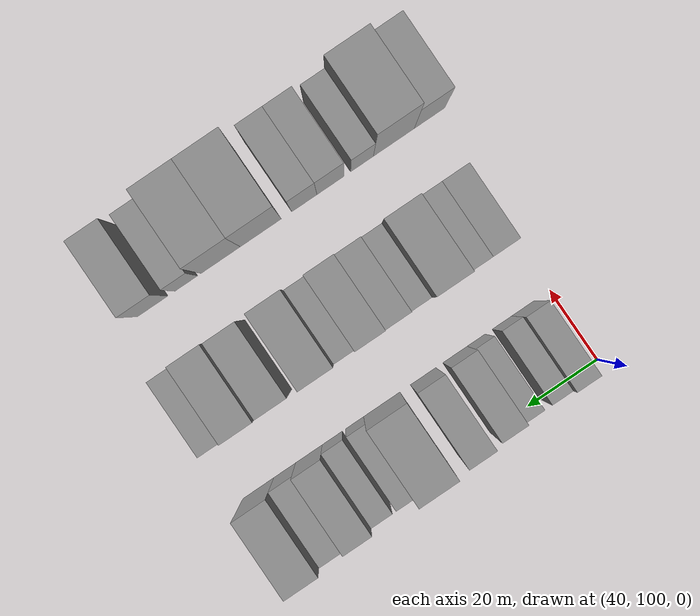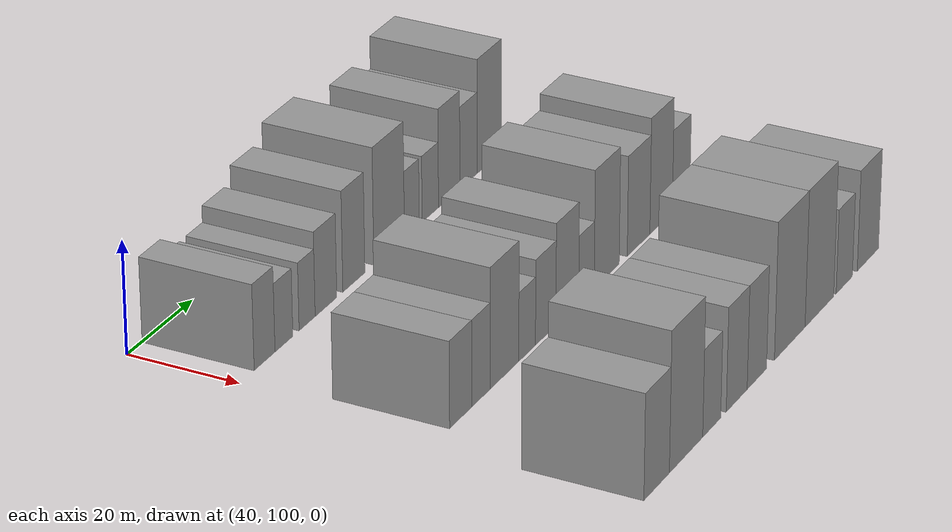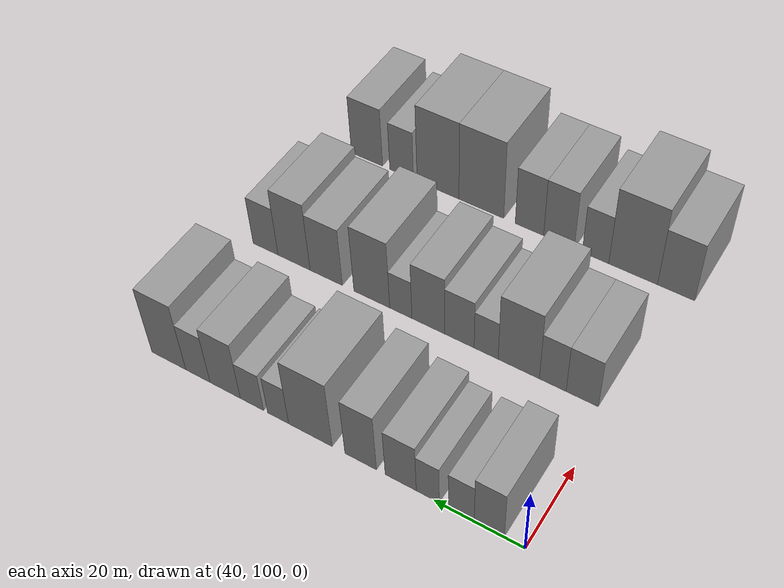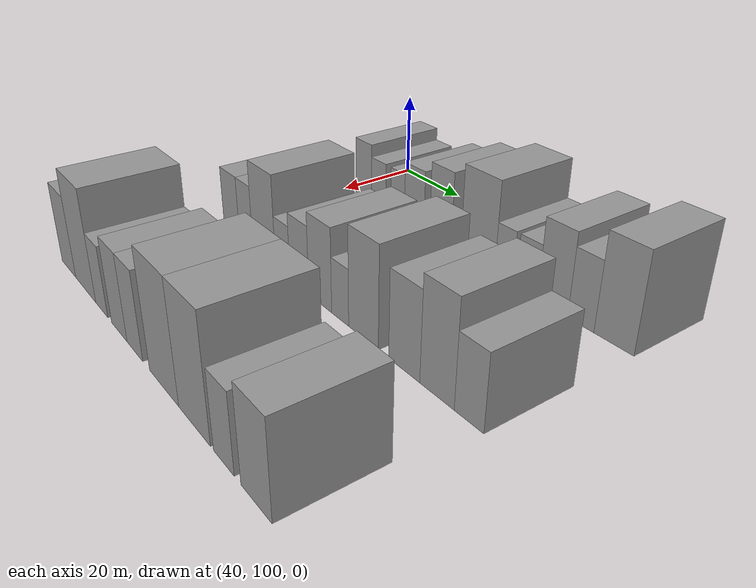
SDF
<sdf version="1.6">
 <world name="default">
  <model name="building_52">
   <static>1</static>
   <pose>50.0000 107.7424 0 0.000000 0.000000 0.000000</pose>
   <link name="link">
    <pose>0 0 7.50 0 0 0</pose>
    <collision name="collision"><geometry><box><size>20.0000 6.5133 15.0000</size></box></geometry></collision>
    <visual name="visual">
     <cast_shadows>0</cast_shadows>
     <geometry><box><size>20.0000 6.5133 15.0000</size></box></geometry>
     <material>
      <script>
       <uri>model://grey_wall/materials/scripts</uri>
       <uri>model://grey_wall/materials/textures</uri>
       <name>vrc/grey_wall</name>
      </script>
     </material>
    </visual>
   </link>
  </model>
  <model name="building_53">
   <static>1</static>
   <pose>50.0000 113.8235 0 0.000000 0.000000 0.000000</pose>
   <link name="link">
    <pose>0 0 6.00 0 0 0</pose>
    <collision name="collision"><geometry><box><size>20.0000 5.6489 12.0000</size></box></geometry></collision>
    <visual name="visual">
     <cast_shadows>0</cast_shadows>
     <geometry><box><size>20.0000 5.6489 12.0000</size></box></geometry>
     <material>
      <script>
       <uri>model://grey_wall/materials/scripts</uri>
       <uri>model://grey_wall/materials/textures</uri>
       <name>vrc/grey_wall</name>
      </script>
     </material>
    </visual>
   </link>
  </model>
  <model name="building_54">
   <static>1</static>
   <pose>50.0000 121.2309 0 0.000000 0.000000 0.000000</pose>
   <link name="link">
    <pose>0 0 6.00 0 0 0</pose>
    <collision name="collision"><geometry><box><size>20.0000 5.1659 12.0000</size></box></geometry></collision>
    <visual name="visual">
     <cast_shadows>0</cast_shadows>
     <geometry><box><size>20.0000 5.1659 12.0000</size></box></geometry>
     <material>
      <script>
       <uri>model://grey_wall/materials/scripts</uri>
       <uri>model://grey_wall/materials/textures</uri>
       <name>vrc/grey_wall</name>
      </script>
     </material>
    </visual>
   </link>
  </model>
  <model name="building_55">
   <static>1</static>
   <pose>50.0000 127.3402 0 0.000000 0.000000 0.000000</pose>
   <link name="link">
    <pose>0 0 7.50 0 0 0</pose>
    <collision name="collision"><geometry><box><size>20.0000 7.0527 15.0000</size></box></geometry></collision>
    <visual name="visual">
     <cast_shadows>0</cast_shadows>
     <geometry><box><size>20.0000 7.0527 15.0000</size></box></geometry>
     <material>
      <script>
       <uri>model://grey_wall/materials/scripts</uri>
       <uri>model://grey_wall/materials/textures</uri>
       <name>vrc/grey_wall</name>
      </script>
     </material>
    </visual>
   </link>
  </model>
  <model name="building_56">
   <static>1</static>
   <pose>50.0000 136.5398 0 0.000000 0.000000 0.000000</pose>
   <link name="link">
    <pose>0 0 9.00 0 0 0</pose>
    <collision name="collision"><geometry><box><size>20.0000 7.3465 18.0000</size></box></geometry></collision>
    <visual name="visual">
     <cast_shadows>0</cast_shadows>
     <geometry><box><size>20.0000 7.3465 18.0000</size></box></geometry>
     <material>
      <script>
       <uri>model://grey_wall/materials/scripts</uri>
       <uri>model://grey_wall/materials/textures</uri>
       <name>vrc/grey_wall</name>
      </script>
     </material>
    </visual>
   </link>
  </model>
  <model name="building_57">
   <static>1</static>
   <pose>50.0000 148.4496 0 0.000000 0.000000 0.000000</pose>
   <link name="link">
    <pose>0 0 10.50 0 0 0</pose>
    <collision name="collision"><geometry><box><size>20.0000 10.4731 21.0000</size></box></geometry></collision>
    <visual name="visual">
     <cast_shadows>0</cast_shadows>
     <geometry><box><size>20.0000 10.4731 21.0000</size></box></geometry>
     <material>
      <script>
       <uri>model://grey_wall/materials/scripts</uri>
       <uri>model://grey_wall/materials/textures</uri>
       <name>vrc/grey_wall</name>
      </script>
     </material>
    </visual>
   </link>
  </model>
  <model name="building_58">
   <static>1</static>
   <pose>50.0000 156.2584 0 0.000000 0.000000 0.000000</pose>
   <link name="link">
    <pose>0 0 6.00 0 0 0</pose>
    <collision name="collision"><geometry><box><size>20.0000 5.1445 12.0000</size></box></geometry></collision>
    <visual name="visual">
     <cast_shadows>0</cast_shadows>
     <geometry><box><size>20.0000 5.1445 12.0000</size></box></geometry>
     <material>
      <script>
       <uri>model://grey_wall/materials/scripts</uri>
       <uri>model://grey_wall/materials/textures</uri>
       <name>vrc/grey_wall</name>
      </script>
     </material>
    </visual>
   </link>
  </model>
  <model name="building_59">
   <static>1</static>
   <pose>50.0000 162.7221 0 0.000000 0.000000 0.000000</pose>
   <link name="link">
    <pose>0 0 6.00 0 0 0</pose>
    <collision name="collision"><geometry><box><size>20.0000 5.7830 12.0000</size></box></geometry></collision>
    <visual name="visual">
     <cast_shadows>0</cast_shadows>
     <geometry><box><size>20.0000 5.7830 12.0000</size></box></geometry>
     <material>
      <script>
       <uri>model://grey_wall/materials/scripts</uri>
       <uri>model://grey_wall/materials/textures</uri>
       <name>vrc/grey_wall</name>
      </script>
     </material>
    </visual>
   </link>
  </model>
  <model name="building_60">
   <static>1</static>
   <pose>50.0000 169.4522 0 0.000000 0.000000 0.000000</pose>
   <link name="link">
    <pose>0 0 9.00 0 0 0</pose>
    <collision name="collision"><geometry><box><size>20.0000 7.6771 18.0000</size></box></geometry></collision>
    <visual name="visual">
     <cast_shadows>0</cast_shadows>
     <geometry><box><size>20.0000 7.6771 18.0000</size></box></geometry>
     <material>
      <script>
       <uri>model://grey_wall/materials/scripts</uri>
       <uri>model://grey_wall/materials/textures</uri>
       <name>vrc/grey_wall</name>
      </script>
     </material>
    </visual>
   </link>
  </model>
  <model name="building_61">
   <static>1</static>
   <pose>50.0000 176.4207 0 0.000000 0.000000 0.000000</pose>
   <link name="link">
    <pose>0 0 7.50 0 0 0</pose>
    <collision name="collision"><geometry><box><size>20.0000 6.2599 15.0000</size></box></geometry></collision>
    <visual name="visual">
     <cast_shadows>0</cast_shadows>
     <geometry><box><size>20.0000 6.2599 15.0000</size></box></geometry>
     <material>
      <script>
       <uri>model://grey_wall/materials/scripts</uri>
       <uri>model://grey_wall/materials/textures</uri>
       <name>vrc/grey_wall</name>
      </script>
     </material>
    </visual>
   </link>
  </model>
  <model name="building_62">
   <static>1</static>
   <pose>50.0000 183.9957 0 0.000000 0.000000 0.000000</pose>
   <link name="link">
    <pose>0 0 10.50 0 0 0</pose>
    <collision name="collision"><geometry><box><size>20.0000 8.8902 21.0000</size></box></geometry></collision>
    <visual name="visual">
     <cast_shadows>0</cast_shadows>
     <geometry><box><size>20.0000 8.8902 21.0000</size></box></geometry>
     <material>
      <script>
       <uri>model://grey_wall/materials/scripts</uri>
       <uri>model://grey_wall/materials/textures</uri>
       <name>vrc/grey_wall</name>
      </script>
     </material>
    </visual>
   </link>
  </model>
  <model name="building_137">
   <static>1</static>
   <pose>85.0000 105.8592 0 0.000000 0.000000 0.000000</pose>
   <link name="link">
    <pose>0 0 7.50 0 0 0</pose>
    <collision name="collision"><geometry><box><size>20.0000 7.3127 15.0000</size></box></geometry></collision>
    <visual name="visual">
     <cast_shadows>0</cast_shadows>
     <geometry><box><size>20.0000 7.3127 15.0000</size></box></geometry>
     <material>
      <script>
       <uri>model://grey_wall/materials/scripts</uri>
       <uri>model://grey_wall/materials/textures</uri>
       <name>vrc/grey_wall</name>
      </script>
     </material>
    </visual>
   </link>
  </model>
  <model name="building_138">
   <static>1</static>
   <pose>85.0000 112.5890 0 0.000000 0.000000 0.000000</pose>
   <link name="link">
    <pose>0 0 7.50 0 0 0</pose>
    <collision name="collision"><geometry><box><size>20.0000 6.1469 15.0000</size></box></geometry></collision>
    <visual name="visual">
     <cast_shadows>0</cast_shadows>
     <geometry><box><size>20.0000 6.1469 15.0000</size></box></geometry>
     <material>
      <script>
       <uri>model://grey_wall/materials/scripts</uri>
       <uri>model://grey_wall/materials/textures</uri>
       <name>vrc/grey_wall</name>
      </script>
     </material>
    </visual>
   </link>
  </model>
  <model name="building_139">
   <static>1</static>
   <pose>85.0000 120.5077 0 0.000000 0.000000 0.000000</pose>
   <link name="link">
    <pose>0 0 10.50 0 0 0</pose>
    <collision name="collision"><geometry><box><size>20.0000 9.6904 21.0000</size></box></geometry></collision>
    <visual name="visual">
     <cast_shadows>0</cast_shadows>
     <geometry><box><size>20.0000 9.6904 21.0000</size></box></geometry>
     <material>
      <script>
       <uri>model://grey_wall/materials/scripts</uri>
       <uri>model://grey_wall/materials/textures</uri>
       <name>vrc/grey_wall</name>
      </script>
     </material>
    </visual>
   </link>
  </model>
  <model name="building_140">
   <static>1</static>
   <pose>85.0000 128.2171 0 0.000000 0.000000 0.000000</pose>
   <link name="link">
    <pose>0 0 6.00 0 0 0</pose>
    <collision name="collision"><geometry><box><size>20.0000 5.7284 12.0000</size></box></geometry></collision>
    <visual name="visual">
     <cast_shadows>0</cast_shadows>
     <geometry><box><size>20.0000 5.7284 12.0000</size></box></geometry>
     <material>
      <script>
       <uri>model://grey_wall/materials/scripts</uri>
       <uri>model://grey_wall/materials/textures</uri>
       <name>vrc/grey_wall</name>
      </script>
     </material>
    </visual>
   </link>
  </model>
  <model name="building_141">
   <static>1</static>
   <pose>85.0000 134.6578 0 0.000000 0.000000 0.000000</pose>
   <link name="link">
    <pose>0 0 7.50 0 0 0</pose>
    <collision name="collision"><geometry><box><size>20.0000 7.1529 15.0000</size></box></geometry></collision>
    <visual name="visual">
     <cast_shadows>0</cast_shadows>
     <geometry><box><size>20.0000 7.1529 15.0000</size></box></geometry>
     <material>
      <script>
       <uri>model://grey_wall/materials/scripts</uri>
       <uri>model://grey_wall/materials/textures</uri>
       <name>vrc/grey_wall</name>
      </script>
     </material>
    </visual>
   </link>
  </model>
  <model name="building_142">
   <static>1</static>
   <pose>85.0000 142.2877 0 0.000000 0.000000 0.000000</pose>
   <link name="link">
    <pose>0 0 9.00 0 0 0</pose>
    <collision name="collision"><geometry><box><size>20.0000 8.1069 18.0000</size></box></geometry></collision>
    <visual name="visual">
     <cast_shadows>0</cast_shadows>
     <geometry><box><size>20.0000 8.1069 18.0000</size></box></geometry>
     <material>
      <script>
       <uri>model://grey_wall/materials/scripts</uri>
       <uri>model://grey_wall/materials/textures</uri>
       <name>vrc/grey_wall</name>
      </script>
     </material>
    </visual>
   </link>
  </model>
  <model name="building_143">
   <static>1</static>
   <pose>85.0000 149.1492 0 0.000000 0.000000 0.000000</pose>
   <link name="link">
    <pose>0 0 6.00 0 0 0</pose>
    <collision name="collision"><geometry><box><size>20.0000 5.6162 12.0000</size></box></geometry></collision>
    <visual name="visual">
     <cast_shadows>0</cast_shadows>
     <geometry><box><size>20.0000 5.6162 12.0000</size></box></geometry>
     <material>
      <script>
       <uri>model://grey_wall/materials/scripts</uri>
       <uri>model://grey_wall/materials/textures</uri>
       <name>vrc/grey_wall</name>
      </script>
     </material>
    </visual>
   </link>
  </model>
  <model name="building_144">
   <static>1</static>
   <pose>85.0000 156.5410 0 0.000000 0.000000 0.000000</pose>
   <link name="link">
    <pose>0 0 10.50 0 0 0</pose>
    <collision name="collision"><geometry><box><size>20.0000 9.1675 21.0000</size></box></geometry></collision>
    <visual name="visual">
     <cast_shadows>0</cast_shadows>
     <geometry><box><size>20.0000 9.1675 21.0000</size></box></geometry>
     <material>
      <script>
       <uri>model://grey_wall/materials/scripts</uri>
       <uri>model://grey_wall/materials/textures</uri>
       <name>vrc/grey_wall</name>
      </script>
     </material>
    </visual>
   </link>
  </model>
  <model name="building_145">
   <static>1</static>
   <pose>85.0000 168.3814 0 0.000000 0.000000 0.000000</pose>
   <link name="link">
    <pose>0 0 9.00 0 0 0</pose>
    <collision name="collision"><geometry><box><size>20.0000 8.5133 18.0000</size></box></geometry></collision>
    <visual name="visual">
     <cast_shadows>0</cast_shadows>
     <geometry><box><size>20.0000 8.5133 18.0000</size></box></geometry>
     <material>
      <script>
       <uri>model://grey_wall/materials/scripts</uri>
       <uri>model://grey_wall/materials/textures</uri>
       <name>vrc/grey_wall</name>
      </script>
     </material>
    </visual>
   </link>
  </model>
  <model name="building_146">
   <static>1</static>
   <pose>85.0000 176.9449 0 0.000000 0.000000 0.000000</pose>
   <link name="link">
    <pose>0 0 10.50 0 0 0</pose>
    <collision name="collision"><geometry><box><size>20.0000 8.6137 21.0000</size></box></geometry></collision>
    <visual name="visual">
     <cast_shadows>0</cast_shadows>
     <geometry><box><size>20.0000 8.6137 21.0000</size></box></geometry>
     <material>
      <script>
       <uri>model://grey_wall/materials/scripts</uri>
       <uri>model://grey_wall/materials/textures</uri>
       <name>vrc/grey_wall</name>
      </script>
     </material>
    </visual>
   </link>
  </model>
  <model name="building_147">
   <static>1</static>
   <pose>85.0000 184.6578 0 0.000000 0.000000 0.000000</pose>
   <link name="link">
    <pose>0 0 7.50 0 0 0</pose>
    <collision name="collision"><geometry><box><size>20.0000 6.8122 15.0000</size></box></geometry></collision>
    <visual name="visual">
     <cast_shadows>0</cast_shadows>
     <geometry><box><size>20.0000 6.8122 15.0000</size></box></geometry>
     <material>
      <script>
       <uri>model://grey_wall/materials/scripts</uri>
       <uri>model://grey_wall/materials/textures</uri>
       <name>vrc/grey_wall</name>
      </script>
     </material>
    </visual>
   </link>
  </model>
  <model name="building_215">
   <static>1</static>
   <pose>120.0000 100.7614 0 0.000000 0.000000 0.000000</pose>
   <link name="link">
    <pose>0 0 9.00 0 0 0</pose>
    <collision name="collision"><geometry><box><size>20.0000 8.7853 18.0000</size></box></geometry></collision>
    <visual name="visual">
     <cast_shadows>0</cast_shadows>
     <geometry><box><size>20.0000 8.7853 18.0000</size></box></geometry>
     <material>
      <script>
       <uri>model://grey_wall/materials/scripts</uri>
       <uri>model://grey_wall/materials/textures</uri>
       <name>vrc/grey_wall</name>
      </script>
     </material>
    </visual>
   </link>
  </model>
  <model name="building_216">
   <static>1</static>
   <pose>120.0000 111.0424 0 0.000000 0.000000 0.000000</pose>
   <link name="link">
    <pose>0 0 12.00 0 0 0</pose>
    <collision name="collision"><geometry><box><size>20.0000 11.7765 24.0000</size></box></geometry></collision>
    <visual name="visual">
     <cast_shadows>0</cast_shadows>
     <geometry><box><size>20.0000 11.7765 24.0000</size></box></geometry>
     <material>
      <script>
       <uri>model://grey_wall/materials/scripts</uri>
       <uri>model://grey_wall/materials/textures</uri>
       <name>vrc/grey_wall</name>
      </script>
     </material>
    </visual>
   </link>
  </model>
  <model name="building_217">
   <static>1</static>
   <pose>120.0000 120.1880 0 0.000000 0.000000 0.000000</pose>
   <link name="link">
    <pose>0 0 7.50 0 0 0</pose>
    <collision name="collision"><geometry><box><size>20.0000 6.5148 15.0000</size></box></geometry></collision>
    <visual name="visual">
     <cast_shadows>0</cast_shadows>
     <geometry><box><size>20.0000 6.5148 15.0000</size></box></geometry>
     <material>
      <script>
       <uri>model://grey_wall/materials/scripts</uri>
       <uri>model://grey_wall/materials/textures</uri>
       <name>vrc/grey_wall</name>
      </script>
     </material>
    </visual>
   </link>
  </model>
  <model name="building_218">
   <static>1</static>
   <pose>120.0000 129.2995 0 0.000000 0.000000 0.000000</pose>
   <link name="link">
    <pose>0 0 9.00 0 0 0</pose>
    <collision name="collision"><geometry><box><size>20.0000 7.7082 18.0000</size></box></geometry></collision>
    <visual name="visual">
     <cast_shadows>0</cast_shadows>
     <geometry><box><size>20.0000 7.7082 18.0000</size></box></geometry>
     <material>
      <script>
       <uri>model://grey_wall/materials/scripts</uri>
       <uri>model://grey_wall/materials/textures</uri>
       <name>vrc/grey_wall</name>
      </script>
     </material>
    </visual>
   </link>
  </model>
  <model name="building_219">
   <static>1</static>
   <pose>120.0000 136.7806 0 0.000000 0.000000 0.000000</pose>
   <link name="link">
    <pose>0 0 9.00 0 0 0</pose>
    <collision name="collision"><geometry><box><size>20.0000 7.2540 18.0000</size></box></geometry></collision>
    <visual name="visual">
     <cast_shadows>0</cast_shadows>
     <geometry><box><size>20.0000 7.2540 18.0000</size></box></geometry>
     <material>
      <script>
       <uri>model://grey_wall/materials/scripts</uri>
       <uri>model://grey_wall/materials/textures</uri>
       <name>vrc/grey_wall</name>
      </script>
     </material>
    </visual>
   </link>
  </model>
  <model name="building_220">
   <static>1</static>
   <pose>120.0000 149.3122 0 0.000000 0.000000 0.000000</pose>
   <link name="link">
    <pose>0 0 12.00 0 0 0</pose>
    <collision name="collision"><geometry><box><size>20.0000 11.8092 24.0000</size></box></geometry></collision>
    <visual name="visual">
     <cast_shadows>0</cast_shadows>
     <geometry><box><size>20.0000 11.8092 24.0000</size></box></geometry>
     <material>
      <script>
       <uri>model://grey_wall/materials/scripts</uri>
       <uri>model://grey_wall/materials/textures</uri>
       <name>vrc/grey_wall</name>
      </script>
     </material>
    </visual>
   </link>
  </model>
  <model name="building_221">
   <static>1</static>
   <pose>120.0000 160.8671 0 0.000000 0.000000 0.000000</pose>
   <link name="link">
    <pose>0 0 12.00 0 0 0</pose>
    <collision name="collision"><geometry><box><size>20.0000 11.3004 24.0000</size></box></geometry></collision>
    <visual name="visual">
     <cast_shadows>0</cast_shadows>
     <geometry><box><size>20.0000 11.3004 24.0000</size></box></geometry>
     <material>
      <script>
       <uri>model://grey_wall/materials/scripts</uri>
       <uri>model://grey_wall/materials/textures</uri>
       <name>vrc/grey_wall</name>
      </script>
     </material>
    </visual>
   </link>
  </model>
  <model name="building_222">
   <static>1</static>
   <pose>120.0000 170.7917 0 0.000000 0.000000 0.000000</pose>
   <link name="link">
    <pose>0 0 7.50 0 0 0</pose>
    <collision name="collision"><geometry><box><size>20.0000 6.5489 15.0000</size></box></geometry></collision>
    <visual name="visual">
     <cast_shadows>0</cast_shadows>
     <geometry><box><size>20.0000 6.5489 15.0000</size></box></geometry>
     <material>
      <script>
       <uri>model://grey_wall/materials/scripts</uri>
       <uri>model://grey_wall/materials/textures</uri>
       <name>vrc/grey_wall</name>
      </script>
     </material>
    </visual>
   </link>
  </model>
  <model name="building_223">
   <static>1</static>
   <pose>120.0000 180.4511 0 0.000000 0.000000 0.000000</pose>
   <link name="link">
    <pose>0 0 9.00 0 0 0</pose>
    <collision name="collision"><geometry><box><size>20.0000 8.7698 18.0000</size></box></geometry></collision>
    <visual name="visual">
     <cast_shadows>0</cast_shadows>
     <geometry><box><size>20.0000 8.7698 18.0000</size></box></geometry>
     <material>
      <script>
       <uri>model://grey_wall/materials/scripts</uri>
       <uri>model://grey_wall/materials/textures</uri>
       <name>vrc/grey_wall</name>
      </script>
     </material>
    </visual>
   </link>
  </model>
 </world>
</sdf>
